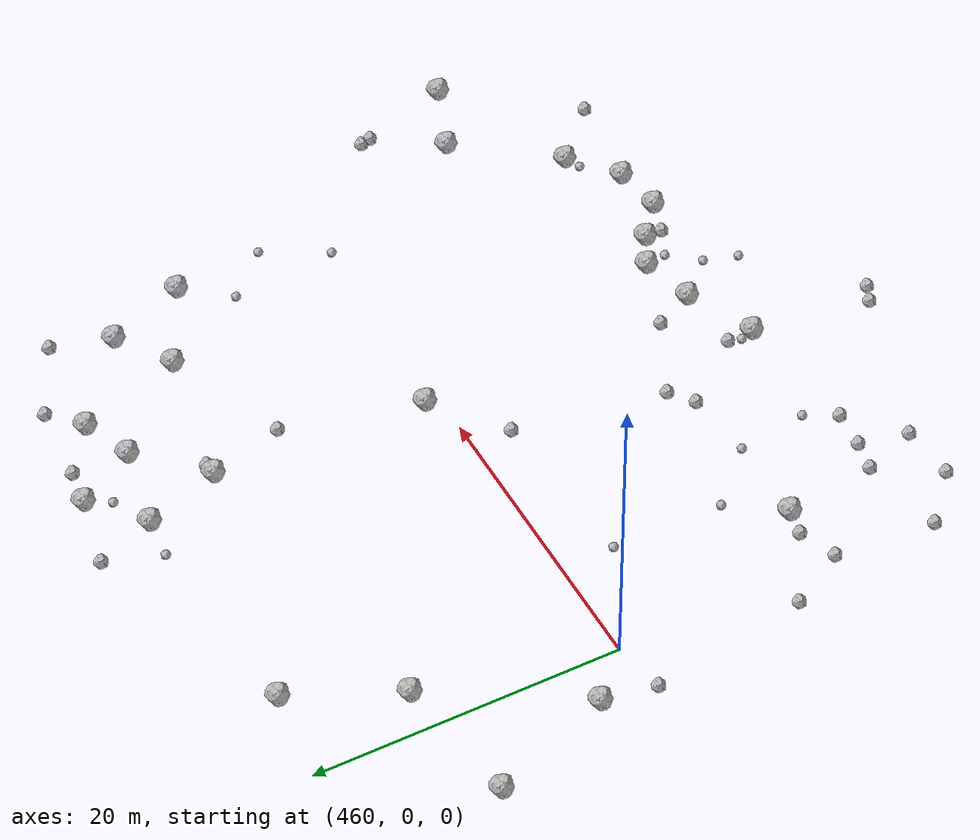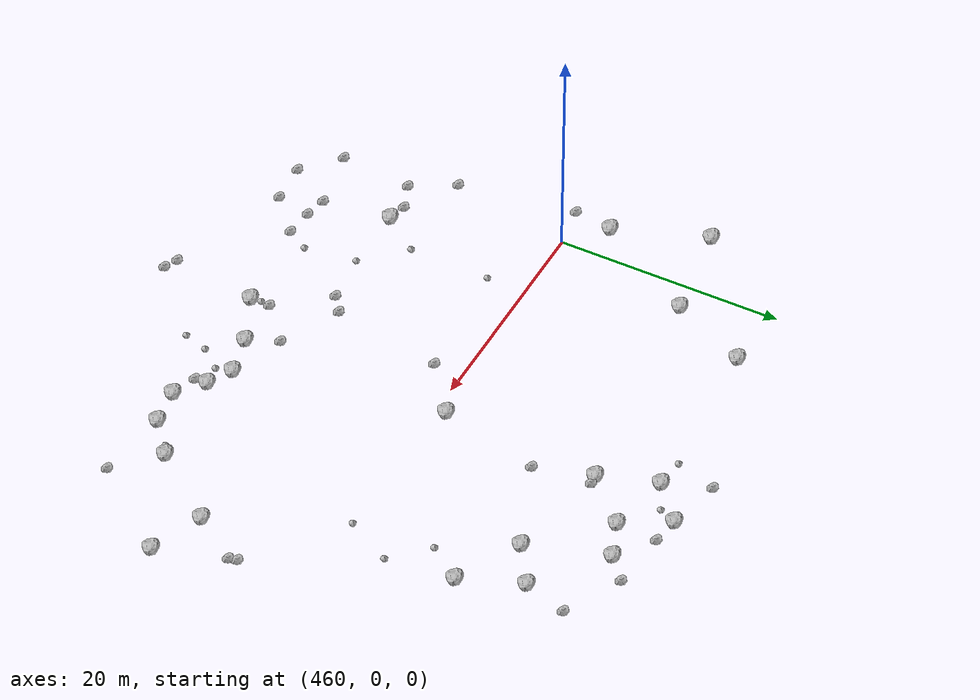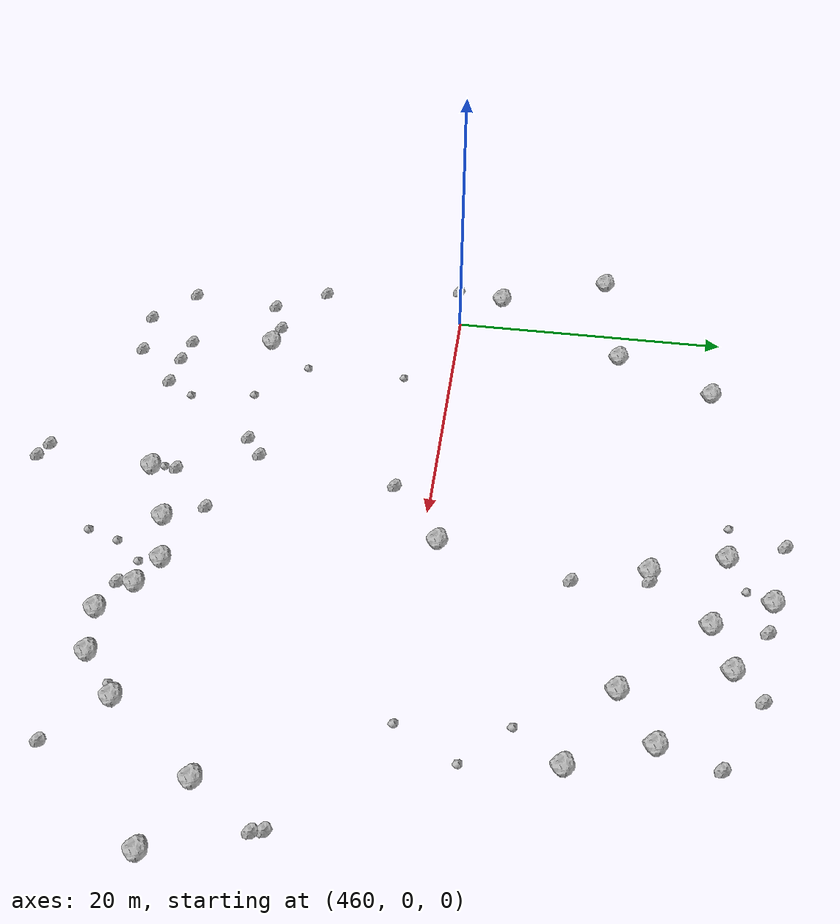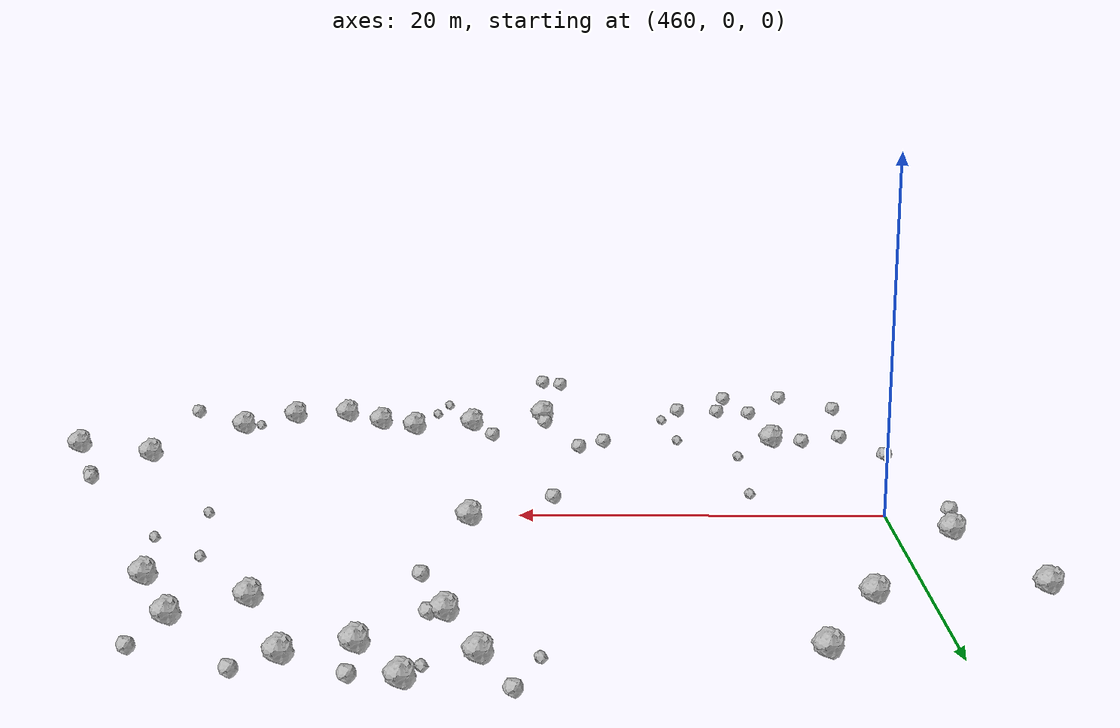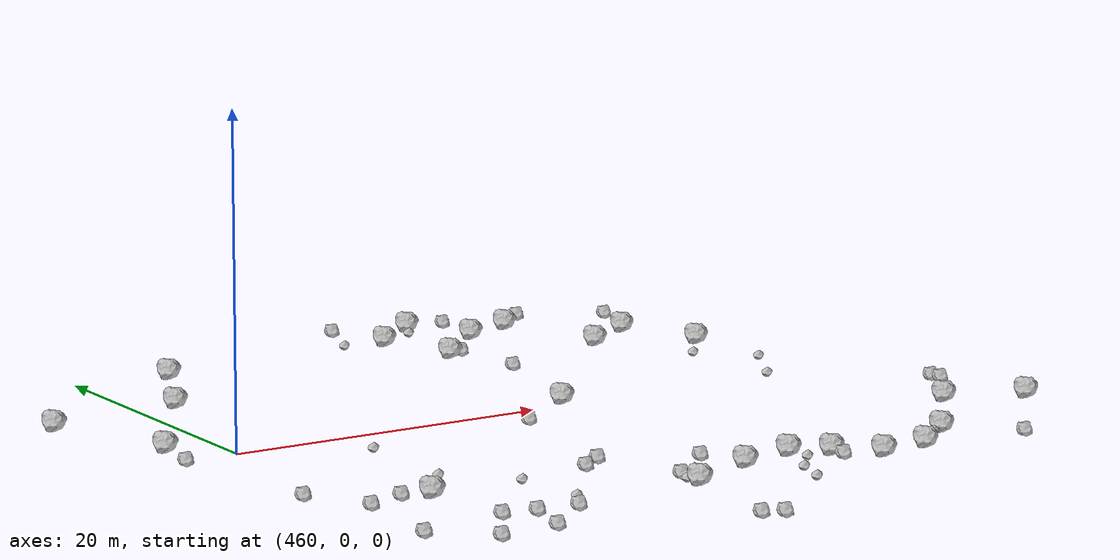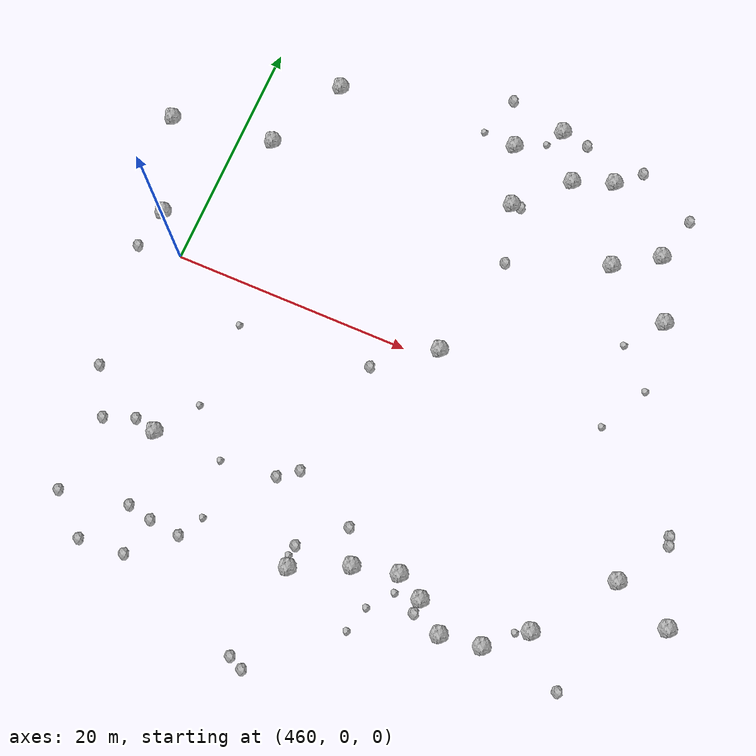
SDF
<sdf version="1.6">
 <world name="default">
  <include><uri>model://sun</uri></include>
  <model name="rock1_12_4">
   <include><uri>model://rock1</uri><pose>457.0530443836944 2.9736209493242924 0.5 0 0 0</pose></include>
  </model>
  <model name="rock1_12_5">
   <include><uri>model://rock1</uri><pose>482.7435423185925 0.9838603064325397 0.5 0 0 0</pose></include>
  </model>
  <model name="rock1_12_6">
   <include><uri>model://rock1</uri><pose>497.5454499280348 -16.820319329938286 0.5 0 0 0</pose></include>
  </model>
  <model name="rock1_12_7">
   <include><uri>model://rock1</uri><pose>466.05153092722173 19.21693761441415 0.5 0 0 0</pose></include>
  </model>
  <model name="rock1_12_8">
   <include><uri>model://rock1</uri><pose>490.65537324922275 20.098381380637527 0.5 0 0 0</pose></include>
  </model>
  <model name="rock1_12_9">
   <include><uri>model://rock1</uri><pose>464.56540415956124 -14.080706596392185 0.5 0 0 0</pose></include>
  </model>
  <model name="rock1_12_10">
   <include><uri>model://rock1</uri><pose>494.55525168438874 -19.295144009214493 0.5 0 0 0</pose></include>
  </model>
  <model name="rock1_12_11">
   <include><uri>model://rock1</uri><pose>483.13140871757304 -17.625944346040104 0.5 0 0 0</pose></include>
  </model>
  <model name="rock1_12_12">
   <include><uri>model://rock1</uri><pose>498.6355719224298 10.218708350523038 0.5 0 0 0</pose></include>
  </model>
  <model name="rock1_12_13">
   <include><uri>model://rock1</uri><pose>496.5332625664676 15.492145670017166 0.5 0 0 0</pose></include>
  </model>
  <model name="rock1_12_14">
   <include><uri>model://rock1</uri><pose>481.73942430285757 19.974596156451653 0.5 0 0 0</pose></include>
  </model>
  <model name="rock1_12_15">
   <include><uri>model://rock1</uri><pose>462.7746432711964 12.348396708334626 0.5 0 0 0</pose></include>
  </model>
  <model name="rock1_12_16">
   <include><uri>model://rock1</uri><pose>485.0454836244021 22.777189713283136 0.5 0 0 0</pose></include>
  </model>
  <model name="rock1_12_17">
   <include><uri>model://rock1</uri><pose>491.2609519582692 -19.765030192350114 0.5 0 0 0</pose></include>
  </model>
  <model name="rock1_12_18">
   <include><uri>model://rock1</uri><pose>483.4727744441024 14.934274931266671 0.5 0 0 0</pose></include>
  </model>
  <model name="rock1_12_19">
   <include><uri>model://rock1</uri><pose>502.2887563554429 -10.704756474184695 0.5 0 0 0</pose></include>
  </model>
  <model name="rock1_12_20">
   <include><uri>model://rock1</uri><pose>487.36018205678414 18.828715582802367 0.5 0 0 0</pose></include>
  </model>
  <model name="rock1_12_21">
   <include><uri>model://rock1</uri><pose>478.6388059709619 -19.664319370700586 0.5 0 0 0</pose></include>
  </model>
  <model name="rock1_12_22">
   <include><uri>model://rock1</uri><pose>486.72755527863296 -16.750435786790128 0.5 0 0 0</pose></include>
  </model>
  <model name="rock1_12_23">
   <include><uri>model://rock1</uri><pose>492.98443207065634 13.152929330439449 0.5 0 0 0</pose></include>
  </model>
  <model name="rock1_12_24">
   <include><uri>model://rock1</uri><pose>454.0499927372933 11.016566151255873 0.5 0 0 0</pose></include>
  </model>
  <model name="rock1_12_25">
   <include><uri>model://rock1</uri><pose>488.92863093090625 -17.8972261028372 0.5 0 0 0</pose></include>
  </model>
  <model name="rock1_12_26">
   <include><uri>model://rock1</uri><pose>507.0142299629853 -12.56165672090518 0.5 0 0 0</pose></include>
  </model>
  <model name="rock2_12_0">
   <include><uri>model://rock2</uri><pose>484.8389303169235 9.951469572293469 0.3 0 0 0</pose></include>
  </model>
  <model name="rock2_12_1">
   <include><uri>model://rock2</uri><pose>480.1251503821104 23.868147254545214 0.3 0 0 0</pose></include>
  </model>
  <model name="rock2_12_2">
   <include><uri>model://rock2</uri><pose>500.960346524475 -20.16246470572846 0.3 0 0 0</pose></include>
  </model>
  <model name="rock2_12_3">
   <include><uri>model://rock2</uri><pose>492.6002526100759 21.897684459113037 0.3 0 0 0</pose></include>
  </model>
  <model name="rock2_12_4">
   <include><uri>model://rock2</uri><pose>488.8626973790928 -19.042517423252306 0.3 0 0 0</pose></include>
  </model>
  <model name="rock2_12_5">
   <include><uri>model://rock2</uri><pose>478.1169692769743 -2.528650926011828 0.3 0 0 0</pose></include>
  </model>
  <model name="rock2_12_6">
   <include><uri>model://rock2</uri><pose>462.71491055653513 -13.704171575750802 0.3 0 0 0</pose></include>
  </model>
  <model name="rock2_12_7">
   <include><uri>model://rock2</uri><pose>478.5470779732462 -27.953670420343332 0.3 0 0 0</pose></include>
  </model>
  <model name="rock2_12_8">
   <include><uri>model://rock2</uri><pose>505.00430074149955 -6.609476540132391 0.3 0 0 0</pose></include>
  </model>
  <model name="rock2_12_9">
   <include><uri>model://rock2</uri><pose>476.43850812881914 -12.42209872114158 0.3 0 0 0</pose></include>
  </model>
  <model name="rock2_12_10">
   <include><uri>model://rock2</uri><pose>487.38215445607176 22.4137755435518 0.3 0 0 0</pose></include>
  </model>
  <model name="rock2_12_11">
   <include><uri>model://rock2</uri><pose>469.8268281600003 -20.741762813268924 0.3 0 0 0</pose></include>
  </model>
  <model name="rock2_12_12">
   <include><uri>model://rock2</uri><pose>460.2335929109502 -14.660730429921111 0.3 0 0 0</pose></include>
  </model>
  <model name="rock2_12_13">
   <include><uri>model://rock2</uri><pose>481.75613704701806 -14.986503349576255 0.3 0 0 0</pose></include>
  </model>
  <model name="rock2_12_14">
   <include><uri>model://rock2</uri><pose>477.35439101730856 -27.410348346969574 0.3 0 0 0</pose></include>
  </model>
  <model name="rock2_12_15">
   <include><uri>model://rock2</uri><pose>467.28734804534264 -20.513071404021122 0.3 0 0 0</pose></include>
  </model>
  <model name="rock2_12_16">
   <include><uri>model://rock2</uri><pose>459.6593537707908 -21.20411935512547 0.3 0 0 0</pose></include>
  </model>
  <model name="rock2_12_17">
   <include><uri>model://rock2</uri><pose>462.8277268941046 -23.985587477916575 0.3 0 0 0</pose></include>
  </model>
  <model name="rock2_12_18">
   <include><uri>model://rock2</uri><pose>456.41255116939334 -0.5148278503214385 0.3 0 0 0</pose></include>
  </model>
  <model name="rock2_12_19">
   <include><uri>model://rock2</uri><pose>458.09209574787224 -10.923283243886655 0.3 0 0 0</pose></include>
  </model>
  <model name="rock2_12_20">
   <include><uri>model://rock2</uri><pose>504.8187461777061 -5.895046730709339 0.3 0 0 0</pose></include>
  </model>
  <model name="rock2_12_21">
   <include><uri>model://rock2</uri><pose>478.4724468804421 -17.9099472776416 0.3 0 0 0</pose></include>
  </model>
  <model name="rock2_12_22">
   <include><uri>model://rock2</uri><pose>497.61240330527926 19.3447045738204 0.3 0 0 0</pose></include>
  </model>
  <model name="rock2_12_23">
   <include><uri>model://rock2</uri><pose>465.2726236635567 -20.115895761213572 0.3 0 0 0</pose></include>
  </model>
  <model name="rock2_12_24">
   <include><uri>model://rock2</uri><pose>474.9050383207986 -13.583554230847113 0.3 0 0 0</pose></include>
  </model>
  <model name="rock2_12_25">
   <include><uri>model://rock2</uri><pose>484.22396426836053 15.006922049849862 0.3 0 0 0</pose></include>
  </model>
  <model name="rock2_12_26">
   <include><uri>model://rock2</uri><pose>466.5692688674295 -23.677494376774447 0.3 0 0 0</pose></include>
  </model>
  <model name="rock3_12_0">
   <include><uri>model://rock3</uri><pose>470.29854293362143 -14.192451764246687 0.2 0 0 0</pose></include>
  </model>
  <model name="rock3_12_1">
   <include><uri>model://rock3</uri><pose>485.3622042825755 -20.130033229653918 0.2 0 0 0</pose></include>
  </model>
  <model name="rock3_12_2">
   <include><uri>model://rock3</uri><pose>496.26844167155815 7.155875547645543 0.2 0 0 0</pose></include>
  </model>
  <model name="rock3_12_3">
   <include><uri>model://rock3</uri><pose>466.9929307580511 -3.495106663623062 0.2 0 0 0</pose></include>
  </model>
  <model name="rock3_12_4">
   <include><uri>model://rock3</uri><pose>484.6880664086585 -22.31208168850233 0.2 0 0 0</pose></include>
  </model>
  <model name="rock3_12_5">
   <include><uri>model://rock3</uri><pose>484.1656013595647 21.180019403417404 0.2 0 0 0</pose></include>
  </model>
  <model name="rock3_12_6">
   <include><uri>model://rock3</uri><pose>496.4793507231548 -17.4013556382488 0.2 0 0 0</pose></include>
  </model>
  <model name="rock3_12_7">
   <include><uri>model://rock3</uri><pose>478.90415584333306 20.18327000688913 0.2 0 0 0</pose></include>
  </model>
  <model name="rock3_12_8">
   <include><uri>model://rock3</uri><pose>470.9537874273867 -18.81060049037208 0.2 0 0 0</pose></include>
  </model>
  <model name="rock3_12_9">
   <include><uri>model://rock3</uri><pose>496.9540706921112 0.14321406051302432 0.2 0 0 0</pose></include>
  </model>
  <model name="rock3_12_10">
   <include><uri>model://rock3</uri><pose>486.9160347938878 -18.2489424167274 0.2 0 0 0</pose></include>
  </model>
  <model name="rock3_12_11">
   <include><uri>model://rock3</uri><pose>499.1577554717848 4.206783323072898 0.2 0 0 0</pose></include>
  </model>
  <model name="rock3_12_12">
   <include><uri>model://rock3</uri><pose>466.8931805093919 -10.789187051987263 0.2 0 0 0</pose></include>
  </model>
  <model name="rock3_12_13">
   <include><uri>model://rock3</uri><pose>478.2896999898595 -18.828502367569936 0.2 0 0 0</pose></include>
  </model>
 </world>
</sdf>
